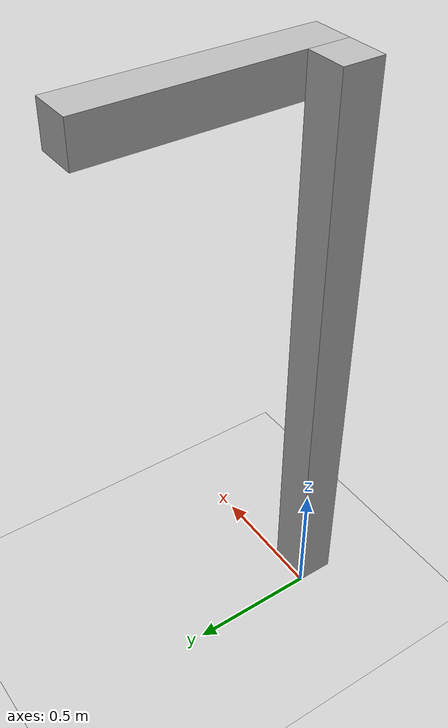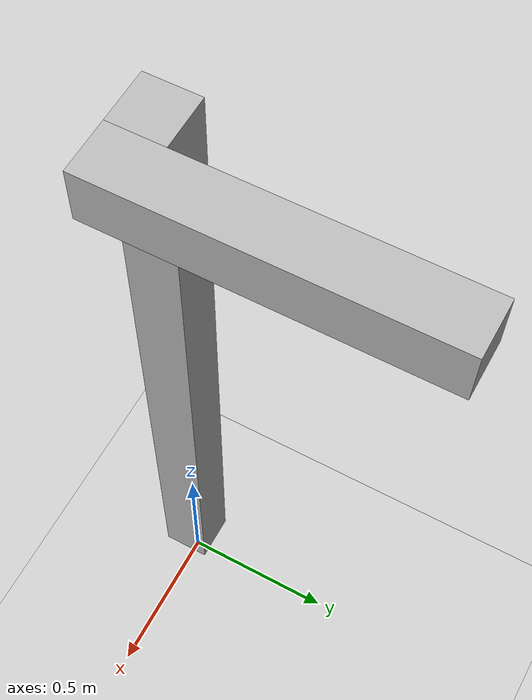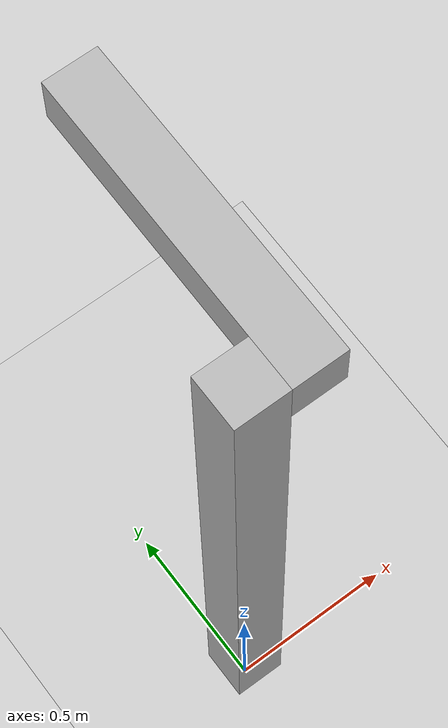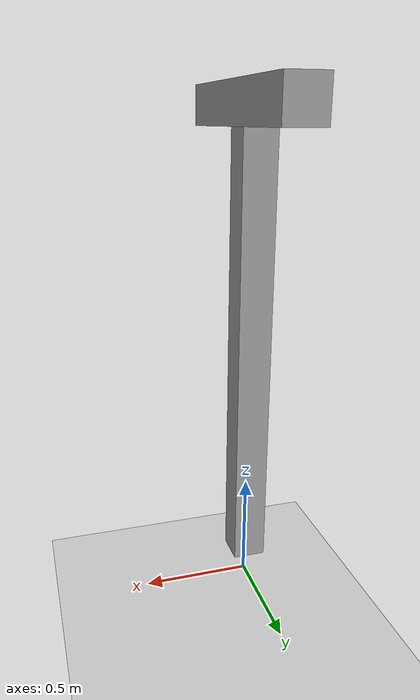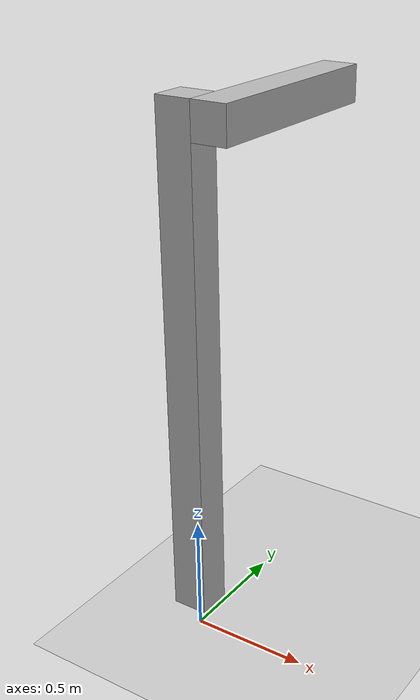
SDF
<?xml version="1.0" ?>

<sdf version="1.7">
  <world name="turorial_controlboard">
    <physics name="1ms" type="ignored">
      <max_step_size>0.001</max_step_size>
      <real_time_factor>1.0</real_time_factor>
    </physics>
    <plugin
      filename="gz-sim-physics-system"
      name="gz::sim::systems::Physics">
    </plugin>
    <plugin
      filename="gz-sim-user-commands-system"
      name="gz::sim::systems::UserCommands">
    </plugin>
    <plugin
      filename="gz-sim-sensors-system"
      name="gz::sim::systems::Sensors">
    </plugin>
    <plugin
      filename="gz-sim-scene-broadcaster-system"
      name="gz::sim::systems::SceneBroadcaster">
    </plugin>

    <light type="directional" name="sun">
      <cast_shadows>true</cast_shadows>
      <pose>0 0 10 0 0 0</pose>
      <diffuse>0.8 0.8 0.8 1</diffuse>
      <specular>0.2 0.2 0.2 1</specular>
      <attenuation>
        <range>1000</range>
        <constant>0.9</constant>
        <linear>0.01</linear>
        <quadratic>0.001</quadratic>
      </attenuation>
      <direction>-0.5 0.1 -0.9</direction>
    </light>

    <model name="ground_plane">
      <static>true</static>
      <link name="link">
        <collision name="collision">
          <geometry>
            <plane>
              <normal>0 0 1</normal>
              <size>100 100</size>
            </plane>
          </geometry>
        </collision>
        <visual name="visual">
          <geometry>
            <plane>
              <normal>0 0 1</normal>
              <size>100 100</size>
            </plane>
          </geometry>
          <material>
            <ambient>0.8 0.8 0.8 1</ambient>
            <diffuse>0.8 0.8 0.8 1</diffuse>
            <specular>0.8 0.8 0.8 1</specular>
          </material>
        </visual>
      </link>
    </model>

    <model name="single_pendulum">
      <pose>0 0 0.2 0 0 0</pose>

      <link name='base_link'>
        <inertial>
          <pose>0 0 0 0 0 0</pose>
          <mass>100</mass>
          <inertia>
            <ixx>1</ixx>
            <ixy>0</ixy>
            <ixz>0</ixz>
            <iyy>1</iyy>
            <iyz>0</iyz>
            <izz>1</izz>
          </inertia>
        </inertial>
        <collision name='base_link_fixed_joint_lump__base_collision'>
          <pose>0 0 1 0 0 0</pose>
          <geometry>
            <box>
              <size>0.14999999999999999 0.14999999999999999 2.1499999999999999</size>
            </box>
          </geometry>
        </collision>
        <visual name='base_link_fixed_joint_lump__base_visual'>
          <pose>0 0 1 0 0 0</pose>
          <geometry>
            <box>
              <size>0.14999999999999999 0.14999999999999999 2.1499999999999999</size>
            </box>
          </geometry>
        </visual>
      </link>
      <joint name='upper_joint' type='revolute'>
        <pose relative_to='base_link'>0.14999999999999999 0 2 -1.5708 0 0</pose>
        <parent>base_link</parent>
        <child>upper_link</child>
        <axis>
          <xyz>1 0 0</xyz>
          <limit>
            <lower>-5</lower>
            <upper>5</upper>
            <effort>100</effort>
            <velocity>100</velocity>
          </limit>
          <dynamics>
            <spring_reference>0</spring_reference>
            <spring_stiffness>0</spring_stiffness>
          </dynamics>
        </axis>
      </joint>
      <link name='upper_link'>
        <pose relative_to='upper_joint'>0 0 0 0 0 0</pose>
        <inertial>
          <pose>0 0 0.40000000000000002 0 0 0</pose>
          <mass>1</mass>
          <inertia>
            <ixx>1</ixx>
            <ixy>0</ixy>
            <ixz>0</ixz>
            <iyy>1</iyy>
            <iyz>0</iyz>
            <izz>1</izz>
          </inertia>
        </inertial>
        <collision name='upper_link_collision'>
          <pose>0 0 0.40000000000000002 0 0 0</pose>
          <geometry>
            <box>
              <size>0.14999999999999999 0.14999999999999999 0.90000000000000002</size>
            </box>
          </geometry>
        </collision>
        <visual name='upper_link_visual'>
          <pose>0 0 0.375 0 0 0</pose>
          <geometry>
            <box>
              <size>0.14999999999999999 0.14999999999999999 0.90000000000000002</size>
            </box>
          </geometry>
        </visual>
      </link>

      <frame name='fake_base_fixed_joint' attached_to='base_link'>
        <pose>0 0 0 0 0 0</pose>
      </frame>
      <frame name='base' attached_to='fake_base_fixed_joint'>
        <pose>0 0 0 0 0 0</pose>
      </frame>

      <!-- Launch the other YARP devices, in this case a controlBoard_nws_yarp to expose the controlboard functionalities via YARP ports -->
      <plugin name="gzyarp::ControlBoard" filename="gz-sim-yarp-controlboard-system">
          <yarpConfigurationFile>model://single_pendulum/conf/gazebo_controlboard.ini</yarpConfigurationFile>
          <initialConfiguration>0.0 0.0</initialConfiguration>
      </plugin>
      <plugin name="robotinterface" filename="libgazebo_yarp_robotinterface.so">
          <yarpRobotInterfaceConfigurationFile>model://single_pendulum/conf/single_pendulum_nws.xml</yarpRobotInterfaceConfigurationFile>
      </plugin>
    </model>

  </world>
</sdf>
